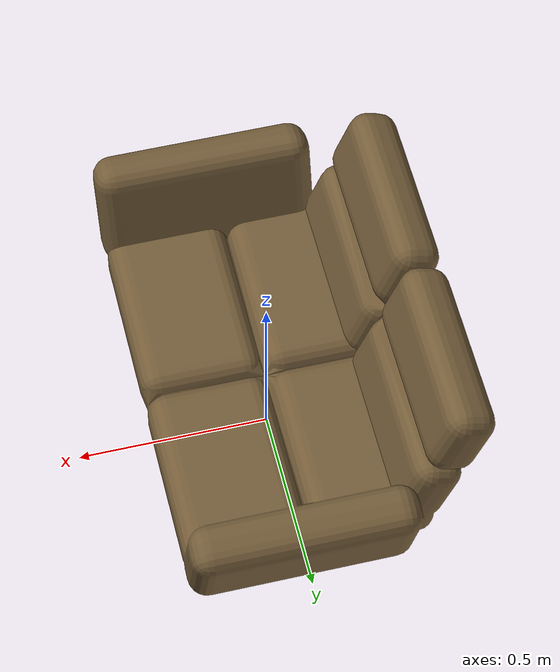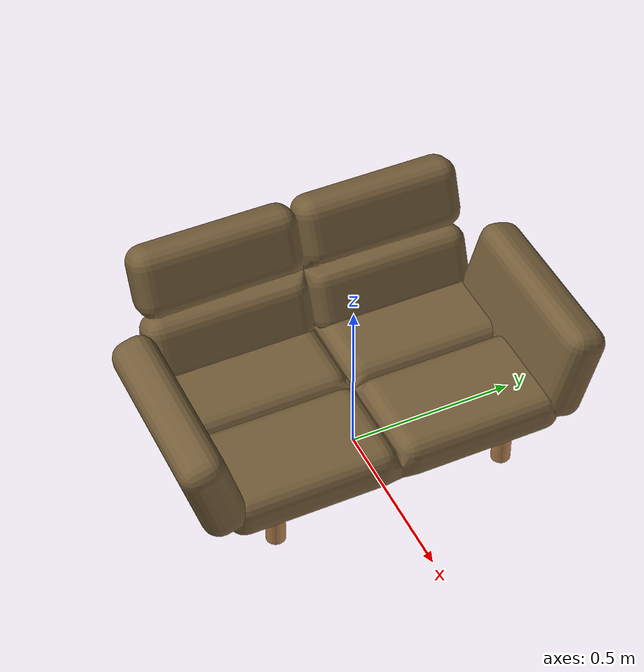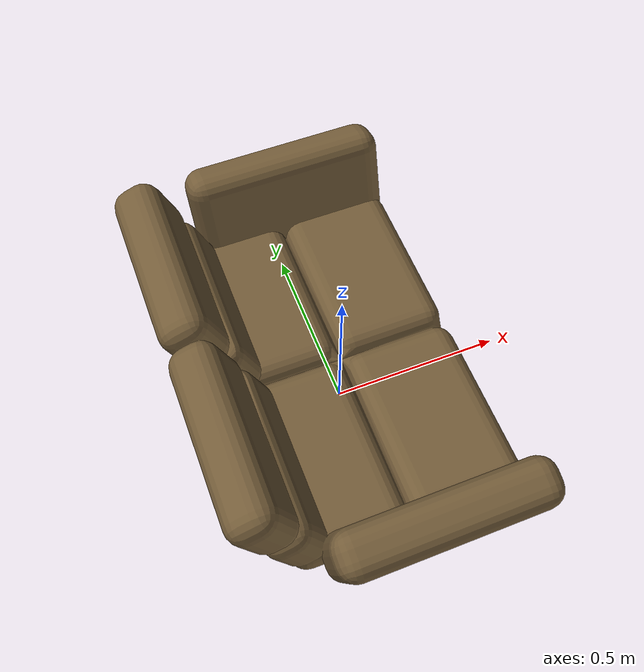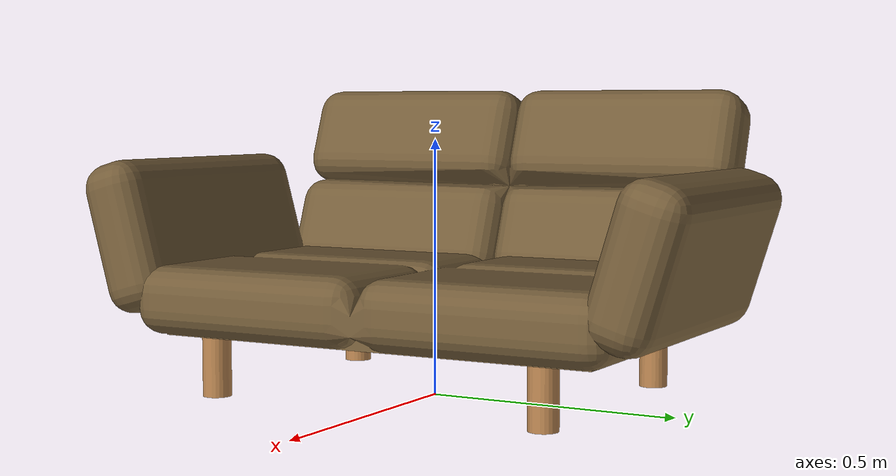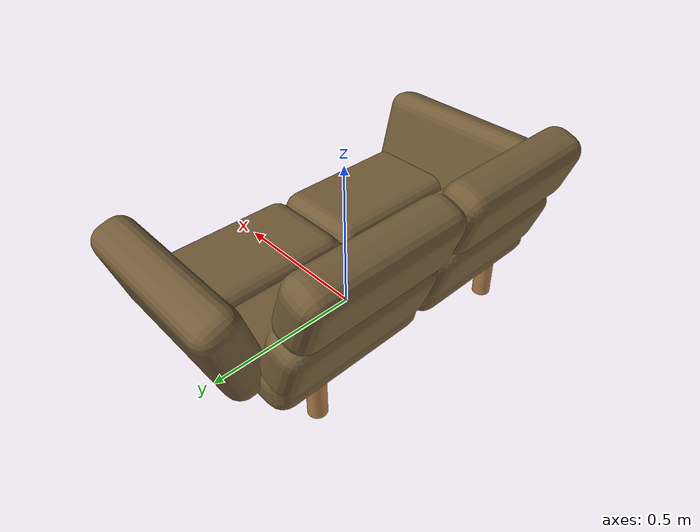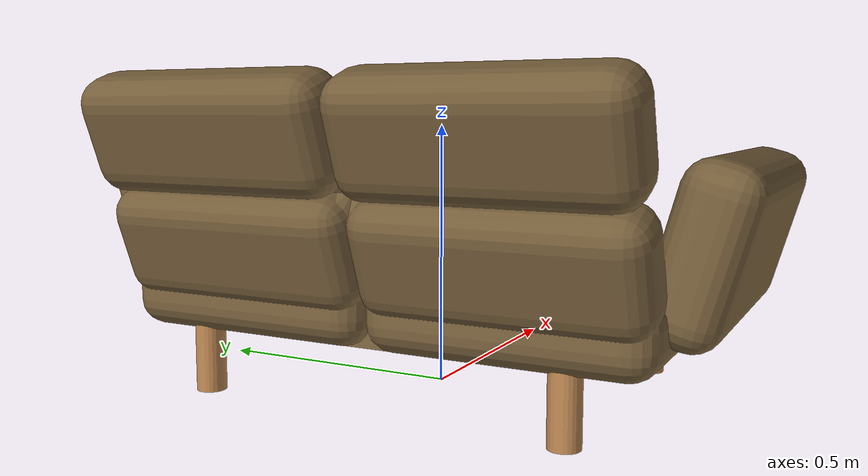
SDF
<?xml version="1.0" ?>
<sdf version="1.4">
    <model name='sofa-fix'>
      <link name='link'>
        <pose>0 0 0 0 0 0</pose>
        <inertial>
          <mass>10.0</mass>
          <inertia>
            <ixx>1</ixx>
            <ixy>0</ixy>
            <ixz>0</ixz>
            <iyy>1</iyy>
            <iyz>0</iyz>
            <izz>1</izz>
          </inertia>
        </inertial>
        <visual name='seat'>
          <pose>0.0 0.0 0.12 0 0 0</pose>
          <geometry>
            <mesh>
              <uri>model://sofa-fix/meshes/sofa_seat.dae</uri>
            </mesh>
          </geometry>
          <material>
            <!-- color:wheat -->
            <ambient>0.913 0.73 0.451 1</ambient>
            <diffuse>0.4565 0.365 0.2255 1</diffuse>
            <specular>0.1 0.1 0.1 1</specular>
            <emissive>0 0 0 0</emissive>
          </material>
        </visual>
        <collision name='collision_seat'>
          <pose>0.0 0.0 0.12 0 0 0</pose>
          <geometry>
            <mesh>
              <uri>model://sofa-fix/meshes/sofa_seat.dae</uri>
            </mesh>
          </geometry>
          <max_contacts>10</max_contacts>
          <surface>
            <bounce/>
            <friction>
              <ode/>
            </friction>
            <contact>
              <ode/>
            </contact>
          </surface>
        </collision>
        <visual name='front_left_frame'>
          <pose>0.24 -0.35 0.07 0 0 0</pose>
          <geometry>
            <cylinder>
              <radius>0.028</radius>
              <length>0.13</length>
            </cylinder>
          </geometry>
          <material>
            <script>
              <uri>model://base_materials/wood/scripts/wood.material</uri>
              <name>base_materials/wood</name>
            </script>
          </material>
        </visual>
        <collision name='collision_front_left_frame'>
          <pose>0.24 -0.35 0.07 0 0 0</pose>
          <geometry>
            <cylinder>
              <radius>0.028</radius>
              <length>0.13</length>
            </cylinder>
          </geometry>
          <max_contacts>10</max_contacts>
          <surface>
            <bounce/>
            <friction>
              <ode/>
            </friction>
            <contact>
              <ode/>
            </contact>
          </surface>
        </collision>
        <visual name='front_right_frame'>
          <pose>0.24 0.35 0.07 0 0 0</pose>
          <geometry>
            <cylinder>
              <radius>0.028</radius>
              <length>0.13</length>
            </cylinder>
          </geometry>
          <material>
            <script>
              <uri>model://base_materials/wood/scripts/wood.material</uri>
              <name>base_materials/wood</name>
            </script>
          </material>
        </visual>
        <collision name='collision_front_right_frame'>
          <pose>0.24 0.35 0.07 0 0 0</pose>
          <geometry>
            <cylinder>
              <radius>0.028</radius>
              <length>0.13</length>
            </cylinder>
          </geometry>
          <max_contacts>10</max_contacts>
          <surface>
            <bounce/>
            <friction>
              <ode/>
            </friction>
            <contact>
              <ode/>
            </contact>
          </surface>
        </collision>
        <visual name='back_left_frame'>
          <pose>-0.27 -0.35 0.07 0 0 0</pose>
          <geometry>
            <cylinder>
              <radius>0.028</radius>
              <length>0.13</length>
            </cylinder>
          </geometry>
          <material>
            <script>
              <uri>model://base_materials/wood/scripts/wood.material</uri>
              <name>base_materials/wood</name>
            </script>
          </material>
        </visual>
        <collision name='collision_back_left_frame'>
          <pose>-0.27 -0.35 0.07 0 0 0</pose>
          <geometry>
            <cylinder>
              <radius>0.028</radius>
              <length>0.13</length>
            </cylinder>
          </geometry>
          <max_contacts>10</max_contacts>
          <surface>
            <bounce/>
            <friction>
              <ode/>
            </friction>
            <contact>
              <ode/>
            </contact>
          </surface>
        </collision>
        <visual name='back_right_frame'>
          <pose>-0.27 0.35 0.07 0 0 0</pose>
          <geometry>
            <cylinder>
              <radius>0.028</radius>
              <length>0.13</length>
            </cylinder>
          </geometry>
          <material>
            <script>
              <uri>model://base_materials/wood/scripts/wood.material</uri>
              <name>base_materials/wood</name>
            </script>
          </material>
        </visual>
        <collision name='collision_back_right_frame'>
          <pose>-0.27 0.35 0.07 0 0 0</pose>
          <geometry>
            <cylinder>
              <radius>0.028</radius>
              <length>0.13</length>
            </cylinder>
          </geometry>
          <max_contacts>10</max_contacts>
          <surface>
            <bounce/>
            <friction>
              <ode/>
            </friction>
            <contact>
              <ode/>
            </contact>
          </surface>
        </collision>
        <velocity_decay>
          <linear>0</linear>
          <angular>0</angular>
        </velocity_decay>
        <self_collide>0</self_collide>
        <kinematic>0</kinematic>
        <gravity>1</gravity>
      </link>
      <static>1</static>
    </model>
</sdf>
